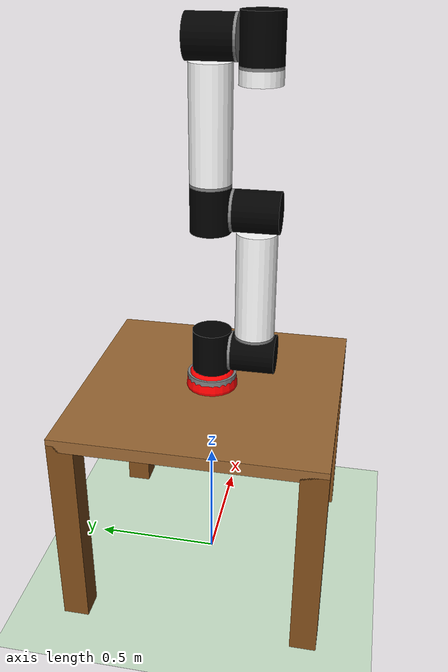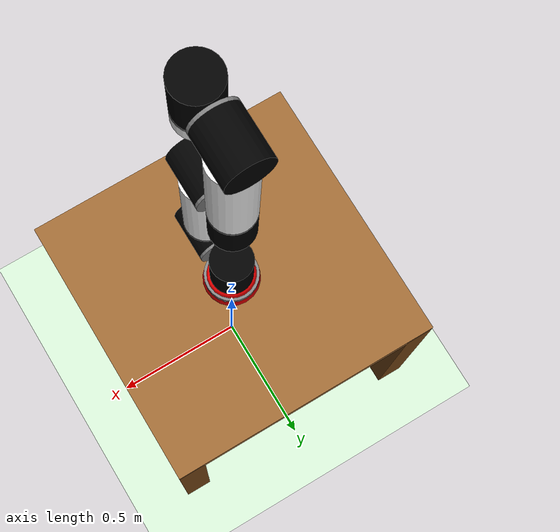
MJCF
<mujoco model="scene">
  <compiler angle="radian" inertiafromgeom="true"/>
  <option timestep="0.01" gravity="0 0 -9.8100000000000005" integrator="implicitfast" solver="CG"/>
  <default>
    <default class="/"/>
  </default>
  <asset>
    <texture name="//unnamed_texture_0" builtin="gradient" rgb1="0.40000000000000002 0.5 0.59999999999999998" rgb2="0 0 0" width="100" height="100"/>
    <texture name="texgeom" type="cube" builtin="flat" rgb1="0.80000000000000004 0.59999999999999998 0.40000000000000002" rgb2="0.80000000000000004 0.59999999999999998 0.40000000000000002" mark="cross" markrgb="1 1 1" random="0.01" width="127" height="1278"/>
    <texture name="texplane" type="2d" builtin="checker" rgb1="0.13700000000000001 0 0.27500000000000002" rgb2="0.20000000000000001 0 0.39000000000000001" width="100" height="100"/>
    <material name="MatPlane" class="/" texture="texplane" texrepeat="60 60" specular="1" shininess="1" reflectance="0.5"/>
    <material name="geom" class="/" texture="texgeom" texuniform="true"/>
  </asset>
  <worldbody>
    <light name="//unnamed_light_0" class="/" directional="true" castshadow="false" pos="0 0 1.3" dir="0 0 -1.3" cutoff="100" exponent="1" diffuse="1 1 1" specular="0.10000000000000001 0.10000000000000001 0.10000000000000001"/>
    <geom name="table_top" class="/" type="box" conaffinity="1" condim="3" size="0.5 0.5 0.025000000000000001" rgba="0.59999999999999998 0.40000000000000002 0.20000000000000001 1" friction="0.69999999999999996 0.10000000000000001 0.10000000000000001" pos="0 0 0.80000000000000004"/>
    <geom name="table_leg_1" class="/" type="box" conaffinity="1" condim="3" size="0.050000000000000003 0.050000000000000003 0.40000000000000002" rgba="0.5 0.29999999999999999 0.10000000000000001 1" friction="0.69999999999999996 0.10000000000000001 0.10000000000000001" pos="0.45000000000000001 0.45000000000000001 0.40000000000000002"/>
    <geom name="table_leg_2" class="/" type="box" conaffinity="1" condim="3" size="0.050000000000000003 0.050000000000000003 0.40000000000000002" rgba="0.5 0.29999999999999999 0.10000000000000001 1" friction="0.69999999999999996 0.10000000000000001 0.10000000000000001" pos="-0.45000000000000001 0.45000000000000001 0.40000000000000002"/>
    <geom name="table_leg_3" class="/" type="box" conaffinity="1" condim="3" size="0.050000000000000003 0.050000000000000003 0.40000000000000002" rgba="0.5 0.29999999999999999 0.10000000000000001 1" friction="0.69999999999999996 0.10000000000000001 0.10000000000000001" pos="0.45000000000000001 -0.45000000000000001 0.40000000000000002"/>
    <geom name="table_leg_4" class="/" type="box" conaffinity="1" condim="3" size="0.050000000000000003 0.050000000000000003 0.40000000000000002" rgba="0.5 0.29999999999999999 0.10000000000000001 1" friction="0.69999999999999996 0.10000000000000001 0.10000000000000001" pos="-0.45000000000000001 -0.45000000000000001 0.40000000000000002"/>
    <geom name="floor" class="/" type="plane" conaffinity="1" condim="3" size="40 40 40" material="MatPlane" rgba="0.80000000000000004 0.90000000000000002 0.80000000000000004 1" friction="0.69999999999999996 0.10000000000000001 0.10000000000000001" pos="0 0 -0.01"/>
    <site name="target" class="/" type="sphere" rgba="1 0 0 1" size="0.10000000000000001" pos="0 0 0.83500000000000008"/>
    <body name="lynx_base" pos="0 0 0.80000000000000004" quat="1 0 0 0">
      <camera name="top_view" class="/" fovy="45" pos="0 0 3" xyaxes="1 0 0 0 1 0"/>
      <camera name="side_view" class="/" fovy="45" pos="2.5 0 0.5" xyaxes="0 1 0 0 0 1"/>
      <camera name="isometric_view" class="/" fovy="45" pos="1.6000000000000001 1.6000000000000001 1.6000000000000001" xyaxes="-0.70699999999999996 0.70699999999999996 0 -0.40799999999999997 -0.40799999999999997 0.81599999999999995"/>
      <geom name="//unnamed_geom_6" class="/" type="cylinder" size="0.095000000000000001 0.042500000000000003" pos="0 0 0.042500000000000003"/>
      <geom name="//unnamed_geom_7" class="/" type="cylinder" size="0.074999999999999997 0.0071999999999999998" pos="0 0 0.092200000000000004"/>
      <body name="joint1" pos="0 0 0.099400000000000002" quat="1 0 0 0">
        <joint name="joint1_joint" class="/" axis="0 0 1" armature="0.01" damping="100000" frictionloss="9.9999999999999995e-07"/>
        <geom name="lynxg1_joint1" class="/" type="cylinder" size="0.074999999999999997 0.082900000000000001" rgba="0 0 0 1" pos="0 0 0.082900000000000001"/>
        <geom name="lynxg2_joint1" class="/" type="cylinder" size="0.074999999999999997 0.0050000000000000001" pos="0 -0.075000000000000011 0.082900000000000001" quat="0.70710678118654757 0.70710678118654757 0 0"/>
        <body name="joint2" pos="0 -0.080000000000000016 0.082900000000000001" quat="4.329780281177467e-17 4.329780281177467e-17 0.70710678118654757 -0.70710678118654757">
          <joint name="joint2_joint" class="/" axis="0 0 1" armature="0.01" damping="100000" frictionloss="9.9999999999999995e-07"/>
          <geom name="lynxg1_joint2" class="/" type="cylinder" size="0.074999999999999997 0.082900000000000001" rgba="0 0 0 1" pos="0 0 0.082900000000000001"/>
          <geom name="lynxg2_joint2" class="/" type="cylinder" size="0.074999999999999997 0.0050000000000000001" pos="0 -0.075000000000000011 0.082900000000000001" quat="0.70710678118654757 0.70710678118654757 0 0"/>
          <body name="straight_tube" pos="0 -0.080000000000000016 0.082900000000000001" quat="0.70710678118654757 0.70710678118654757 0 0">
            <geom name="lynx_straight_tube" class="/" type="cylinder" size="0.074999999999999997 0.20000000000000001" rgba="1 1 1 1" pos="0 0 0.20000000000000001"/>
            <body name="joint3" pos="0 0 0.40000000000000002" quat="0.70710678118654757 0.70710678118654746 0 0">
              <joint name="joint3_joint" class="/" type="hinge" pos="0 0.074999999999999997 0" axis="0 0 1" armature="0.01" damping="100000" frictionloss="9.9999999999999995e-07"/>
              <geom name="lynxg1_joint3" class="/" type="cylinder" size="0.074999999999999997 0.082900000000000001" rgba="0 0 0 1" pos="0 0.074999999999999997 0"/>
              <geom name="lynxg2_joint3" class="/" type="cylinder" size="0.074999999999999997 0.0050000000000000001" pos="0 0.075000000000000011 0.087900000000000006" quat="1.1102230246251565e-16 1 0 0"/>
              <body name="joint4" pos="0 0.075000000000000011 0.09290000000000001" quat="4.329780281177467e-17 4.3297802811774658e-17 0.70710678118654757 0.70710678118654746">
                <joint name="joint4_joint" class="/" type="hinge" pos="0 0.074999999999999997 0" axis="0 0 1" armature="0.01" damping="100000" frictionloss="9.9999999999999995e-07"/>
                <geom name="lynxg1_joint4" class="/" type="cylinder" size="0.074999999999999997 0.082900000000000001" rgba="0 0 0 1" pos="0 0.074999999999999997 0"/>
                <geom name="lynxg2_joint4" class="/" type="cylinder" size="0.074999999999999997 0.0050000000000000001" pos="0 0.075000000000000011 0.087900000000000006" quat="1.1102230246251565e-16 1 0 0"/>
                <body name="straight_tube2" pos="0 0.075000000000000011 0.09290000000000001" quat="1 0 0 0">
                  <geom name="lynx_straight_tube2" class="/" type="cylinder" size="0.074999999999999997 0.20000000000000001" rgba="1 1 1 1" pos="0 0 0.20000000000000001"/>
                  <body name="joint5" pos="0 0 0.40000000000000002" quat="0.70710678118654757 0.70710678118654746 0 0">
                    <joint name="joint5_joint" class="/" type="hinge" pos="0 0.074999999999999997 0" axis="0 0 1" armature="0.01" damping="100000" frictionloss="9.9999999999999995e-07"/>
                    <geom name="lynxg1_joint5" class="/" type="cylinder" size="0.074999999999999997 0.082900000000000001" rgba="0 0 0 1" pos="0 0.074999999999999997 0"/>
                    <geom name="lynxg2_joint5" class="/" type="cylinder" size="0.074999999999999997 0.0050000000000000001" pos="0 0.075000000000000011 0.087900000000000006" quat="1.1102230246251565e-16 1 0 0"/>
                    <body name="joint6" pos="0 0.075000000000000011 0.09290000000000001" quat="0.70710678118654757 0.70710678118654746 0 0">
                      <joint name="joint6_joint" class="/" type="hinge" pos="0 0.074999999999999997 0" axis="0 0 1" armature="0.01" damping="100000" frictionloss="9.9999999999999995e-07"/>
                      <geom name="lynxg1_joint6" class="/" type="cylinder" size="0.074999999999999997 0.082900000000000001" rgba="0 0 0 1" pos="0 0.074999999999999997 0"/>
                      <geom name="lynxg2_joint6" class="/" type="cylinder" size="0.074999999999999997 0.0050000000000000001" pos="0 0.075000000000000011 0.087900000000000006" quat="1.1102230246251565e-16 1 0 0"/>
                      <body name="ee_cylinder" pos="0 0.075000000000000011 0.09290000000000001" quat="1 0 0 0">
                        <geom name="lynx_ee_cylinder" class="/" type="cylinder" size="0.074999999999999997 0.025000000000000001" rgba="1 1 1 1" pos="0 0 0.025000000000000001"/>
                        <site name="end_effector" class="/" type="sphere" rgba="1 0 0 1" size="0.01" pos="0 0 0.050000000000000003"/>
                      </body>
                    </body>
                  </body>
                </body>
              </body>
            </body>
          </body>
        </body>
      </body>
    </body>
  </worldbody>
  <actuator>
    <position name="//unnamed_actuator_0" class="/" joint="joint1_joint" kp="100000"/>
    <position name="//unnamed_actuator_1" class="/" joint="joint2_joint" kp="100000"/>
    <position name="//unnamed_actuator_2" class="/" joint="joint3_joint" kp="100000"/>
    <position name="//unnamed_actuator_3" class="/" joint="joint4_joint" kp="100000"/>
    <position name="//unnamed_actuator_4" class="/" joint="joint5_joint" kp="100000"/>
    <position name="//unnamed_actuator_5" class="/" joint="joint6_joint" kp="100000"/>
  </actuator>
</mujoco>
